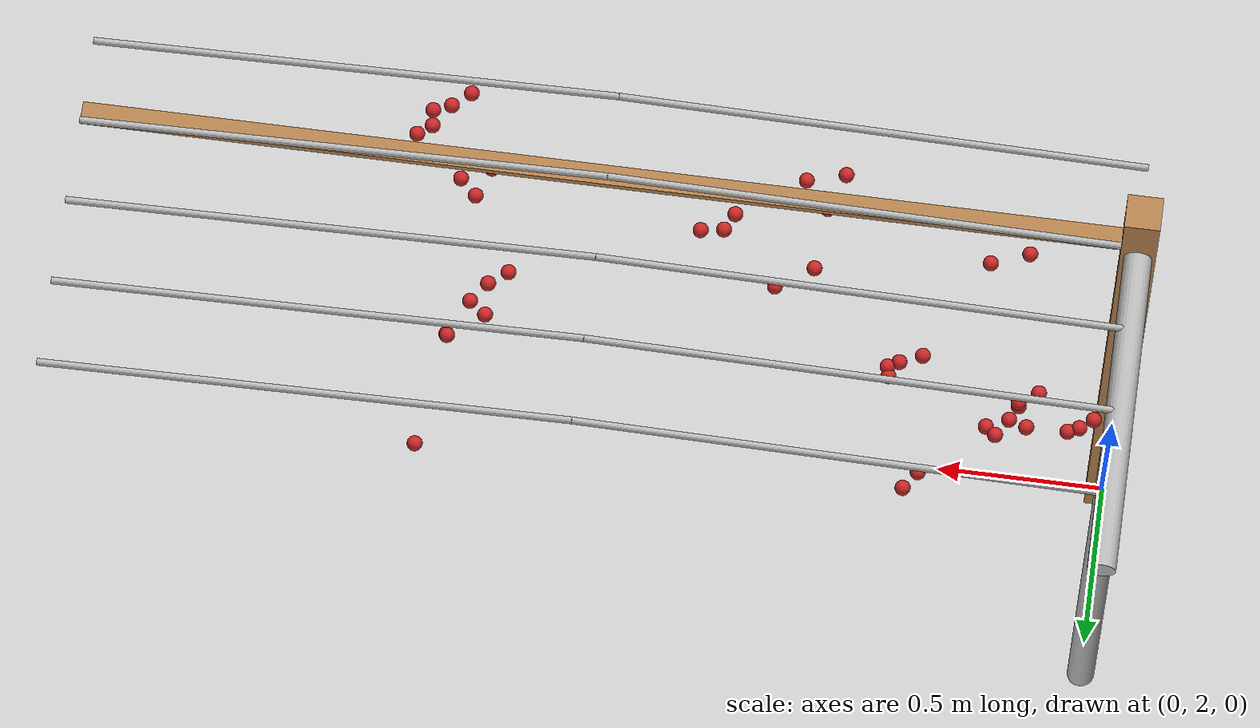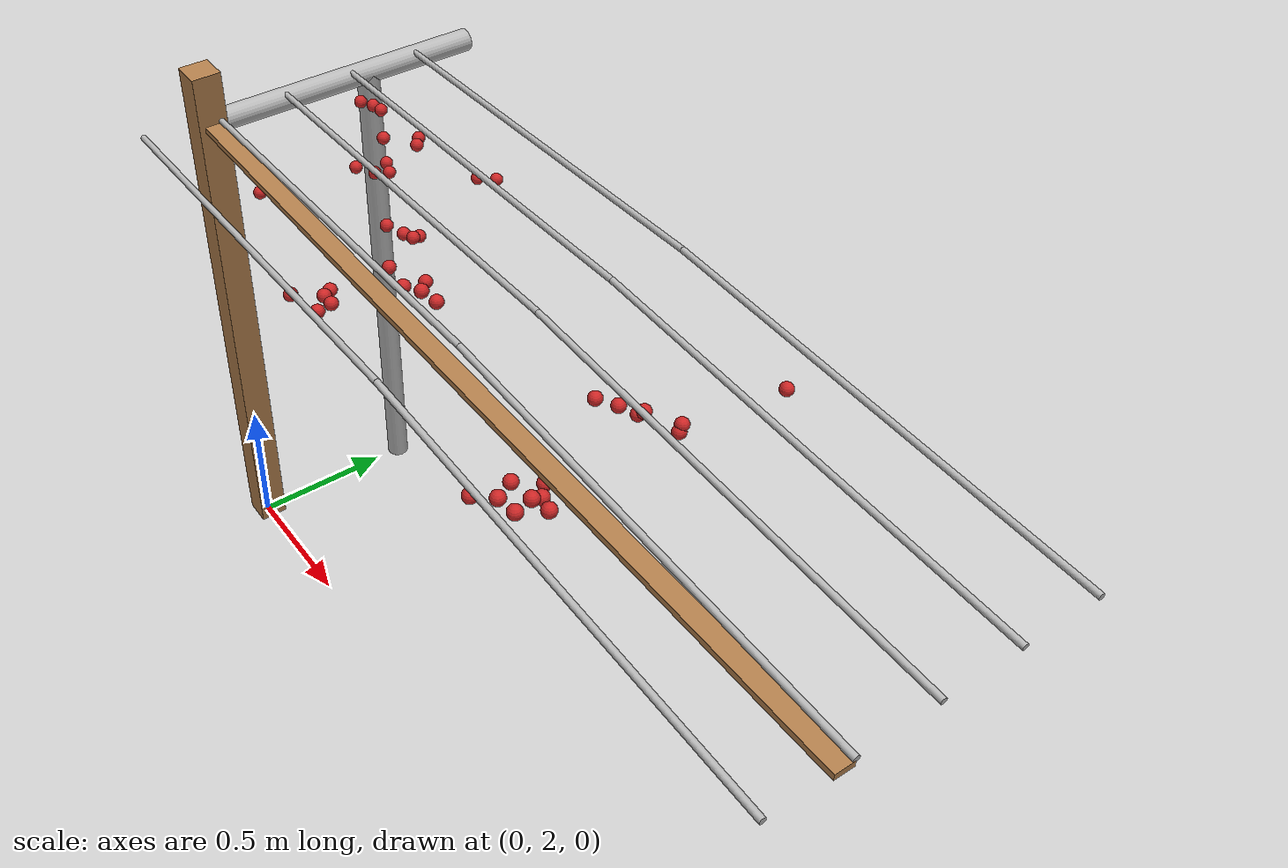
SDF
<sdf version="1.4">
 <model name="pergola">
  <include><name>post_2</name><pose>0.0 2.0 0 0 0 0</pose><uri>model://post</uri></include>
  <link name="beam_2">
   <pose>1.5 2.0 1.81 0 0 0</pose>
   <collision name="collision"><geometry><box><size>3.0 0.06 0.02</size></box></geometry></collision>
   <visual name="visual">
    <geometry><box><size>3.0 0.06 0.02</size></box></geometry>
    <material>
     <script>
      <uri>model://post/materials/scripts</uri>
      <uri>model://post/materials/textures</uri>
      <name>Post/Wood</name>
     </script>
    </material>
   </visual>
   <inertial>
    <mass>5</mass>
    <inertia>
     <ixx>0.0016666666666666668</ixx>
     <ixy>0.0</ixy>
     <ixz>0.0</ixz>
     <iyy>3.7515</iyy>
     <iyz>0.0</iyz>
     <izz>3.750166666666667</izz>
    </inertia>
   </inertial>
  </link>
  <include><name>tree_2</name><pose>0.0 2.6 0 0 0 0</pose><uri>model://tree_trunk</uri></include>
  <link name="baseBranch_2">
   <pose>0.0 2.5 1.8 1.5707963267948966 0 0</pose>
   <collision name="collision">
    <geometry><cylinder><radius>0.04</radius><length>1.0</length></cylinder></geometry>
   </collision>
   <visual name="visual">
    <geometry><cylinder><radius>0.04</radius><length>1.0</length></cylinder></geometry>
    <material>
     <script>
      <uri>model://tree_trunk/materials/scripts</uri>
      <uri>model://tree_trunk/materials/textures</uri>
      <name>Tree/Bark</name>
     </script>
    </material>
   </visual>
   <inertial>
    <mass>10</mass>
    <inertia>
     <ixx>0.8373333333333332</ixx>
     <ixy>0.0</ixy>
     <ixz>0.0</ixz>
     <iyy>0.8373333333333332</iyy>
     <iyz>0.0</iyz>
     <izz>0.008</izz>
    </inertia>
   </inertial>
  </link>
  <link name="vine_14">
   <pose>0.75 1.78 1.85 0 1.5374753309166493 0</pose>
   <collision name="collision">
    <geometry><cylinder><radius>0.01</radius><length>1.5008331019803633</length></cylinder></geometry>
   </collision>
   <visual name="visual">
    <geometry><cylinder><radius>0.01</radius><length>1.5008331019803633</length></cylinder></geometry>
    <material>
     <script>
      <uri>model://tree_trunk/materials/scripts</uri>
      <uri>model://tree_trunk/materials/textures</uri>
      <name>Tree/Bark</name>
     </script>
    </material>
   </visual>
   <inertial>
    <mass>5</mass>
    <inertia>
     <ixx>0.9386666666666668</ixx>
     <ixy>0.0</ixy>
     <ixz>0.0</ixz>
     <iyy>0.9386666666666668</iyy>
     <iyz>0.0</iyz>
     <izz>0.00025</izz>
    </inertia>
   </inertial>
  </link>
  <link name="vine_15">
   <pose>2.25 1.78 1.85 0 -1.5374753309166493 0</pose>
   <collision name="collision">
    <geometry><cylinder><radius>0.01</radius><length>1.5008331019803633</length></cylinder></geometry>
   </collision>
   <visual name="visual">
    <geometry><cylinder><radius>0.01</radius><length>1.5008331019803633</length></cylinder></geometry>
    <material>
     <script>
      <uri>model://tree_trunk/materials/scripts</uri>
      <uri>model://tree_trunk/materials/textures</uri>
      <name>Tree/Bark</name>
     </script>
    </material>
   </visual>
   <inertial>
    <mass>5</mass>
    <inertia>
     <ixx>0.9386666666666668</ixx>
     <ixy>0.0</ixy>
     <ixz>0.0</ixz>
     <iyy>0.9386666666666668</iyy>
     <iyz>0.0</iyz>
     <izz>0.00025</izz>
    </inertia>
   </inertial>
  </link>
  <link name="vine_16">
   <pose>0.75 2.03 1.85 0 1.5374753309166493 0</pose>
   <collision name="collision">
    <geometry><cylinder><radius>0.01</radius><length>1.5008331019803633</length></cylinder></geometry>
   </collision>
   <visual name="visual">
    <geometry><cylinder><radius>0.01</radius><length>1.5008331019803633</length></cylinder></geometry>
    <material>
     <script>
      <uri>model://tree_trunk/materials/scripts</uri>
      <uri>model://tree_trunk/materials/textures</uri>
      <name>Tree/Bark</name>
     </script>
    </material>
   </visual>
   <inertial>
    <mass>5</mass>
    <inertia>
     <ixx>0.9386666666666668</ixx>
     <ixy>0.0</ixy>
     <ixz>0.0</ixz>
     <iyy>0.9386666666666668</iyy>
     <iyz>0.0</iyz>
     <izz>0.00025</izz>
    </inertia>
   </inertial>
  </link>
  <link name="vine_17">
   <pose>2.25 2.03 1.85 0 -1.5374753309166493 0</pose>
   <collision name="collision">
    <geometry><cylinder><radius>0.01</radius><length>1.5008331019803633</length></cylinder></geometry>
   </collision>
   <visual name="visual">
    <geometry><cylinder><radius>0.01</radius><length>1.5008331019803633</length></cylinder></geometry>
    <material>
     <script>
      <uri>model://tree_trunk/materials/scripts</uri>
      <uri>model://tree_trunk/materials/textures</uri>
      <name>Tree/Bark</name>
     </script>
    </material>
   </visual>
   <inertial>
    <mass>5</mass>
    <inertia>
     <ixx>0.9386666666666668</ixx>
     <ixy>0.0</ixy>
     <ixz>0.0</ixz>
     <iyy>0.9386666666666668</iyy>
     <iyz>0.0</iyz>
     <izz>0.00025</izz>
    </inertia>
   </inertial>
  </link>
  <link name="vine_18">
   <pose>0.75 2.28 1.85 0 1.5374753309166493 0</pose>
   <collision name="collision">
    <geometry><cylinder><radius>0.01</radius><length>1.5008331019803633</length></cylinder></geometry>
   </collision>
   <visual name="visual">
    <geometry><cylinder><radius>0.01</radius><length>1.5008331019803633</length></cylinder></geometry>
    <material>
     <script>
      <uri>model://tree_trunk/materials/scripts</uri>
      <uri>model://tree_trunk/materials/textures</uri>
      <name>Tree/Bark</name>
     </script>
    </material>
   </visual>
   <inertial>
    <mass>5</mass>
    <inertia>
     <ixx>0.9386666666666668</ixx>
     <ixy>0.0</ixy>
     <ixz>0.0</ixz>
     <iyy>0.9386666666666668</iyy>
     <iyz>0.0</iyz>
     <izz>0.00025</izz>
    </inertia>
   </inertial>
  </link>
  <link name="vine_19">
   <pose>2.25 2.28 1.85 0 -1.5374753309166493 0</pose>
   <collision name="collision">
    <geometry><cylinder><radius>0.01</radius><length>1.5008331019803633</length></cylinder></geometry>
   </collision>
   <visual name="visual">
    <geometry><cylinder><radius>0.01</radius><length>1.5008331019803633</length></cylinder></geometry>
    <material>
     <script>
      <uri>model://tree_trunk/materials/scripts</uri>
      <uri>model://tree_trunk/materials/textures</uri>
      <name>Tree/Bark</name>
     </script>
    </material>
   </visual>
   <inertial>
    <mass>5</mass>
    <inertia>
     <ixx>0.9386666666666668</ixx>
     <ixy>0.0</ixy>
     <ixz>0.0</ixz>
     <iyy>0.9386666666666668</iyy>
     <iyz>0.0</iyz>
     <izz>0.00025</izz>
    </inertia>
   </inertial>
  </link>
  <link name="vine_20">
   <pose>0.75 2.53 1.85 0 1.5374753309166493 0</pose>
   <collision name="collision">
    <geometry><cylinder><radius>0.01</radius><length>1.5008331019803633</length></cylinder></geometry>
   </collision>
   <visual name="visual">
    <geometry><cylinder><radius>0.01</radius><length>1.5008331019803633</length></cylinder></geometry>
    <material>
     <script>
      <uri>model://tree_trunk/materials/scripts</uri>
      <uri>model://tree_trunk/materials/textures</uri>
      <name>Tree/Bark</name>
     </script>
    </material>
   </visual>
   <inertial>
    <mass>5</mass>
    <inertia>
     <ixx>0.9386666666666668</ixx>
     <ixy>0.0</ixy>
     <ixz>0.0</ixz>
     <iyy>0.9386666666666668</iyy>
     <iyz>0.0</iyz>
     <izz>0.00025</izz>
    </inertia>
   </inertial>
  </link>
  <link name="vine_21">
   <pose>2.25 2.53 1.85 0 -1.5374753309166493 0</pose>
   <collision name="collision">
    <geometry><cylinder><radius>0.01</radius><length>1.5008331019803633</length></cylinder></geometry>
   </collision>
   <visual name="visual">
    <geometry><cylinder><radius>0.01</radius><length>1.5008331019803633</length></cylinder></geometry>
    <material>
     <script>
      <uri>model://tree_trunk/materials/scripts</uri>
      <uri>model://tree_trunk/materials/textures</uri>
      <name>Tree/Bark</name>
     </script>
    </material>
   </visual>
   <inertial>
    <mass>5</mass>
    <inertia>
     <ixx>0.9386666666666668</ixx>
     <ixy>0.0</ixy>
     <ixz>0.0</ixz>
     <iyy>0.9386666666666668</iyy>
     <iyz>0.0</iyz>
     <izz>0.00025</izz>
    </inertia>
   </inertial>
  </link>
  <link name="vine_22">
   <pose>0.75 2.78 1.85 0 1.5374753309166493 0</pose>
   <collision name="collision">
    <geometry><cylinder><radius>0.01</radius><length>1.5008331019803633</length></cylinder></geometry>
   </collision>
   <visual name="visual">
    <geometry><cylinder><radius>0.01</radius><length>1.5008331019803633</length></cylinder></geometry>
    <material>
     <script>
      <uri>model://tree_trunk/materials/scripts</uri>
      <uri>model://tree_trunk/materials/textures</uri>
      <name>Tree/Bark</name>
     </script>
    </material>
   </visual>
   <inertial>
    <mass>5</mass>
    <inertia>
     <ixx>0.9386666666666668</ixx>
     <ixy>0.0</ixy>
     <ixz>0.0</ixz>
     <iyy>0.9386666666666668</iyy>
     <iyz>0.0</iyz>
     <izz>0.00025</izz>
    </inertia>
   </inertial>
  </link>
  <link name="vine_23">
   <pose>2.25 2.78 1.85 0 -1.5374753309166493 0</pose>
   <collision name="collision">
    <geometry><cylinder><radius>0.01</radius><length>1.5008331019803633</length></cylinder></geometry>
   </collision>
   <visual name="visual">
    <geometry><cylinder><radius>0.01</radius><length>1.5008331019803633</length></cylinder></geometry>
    <material>
     <script>
      <uri>model://tree_trunk/materials/scripts</uri>
      <uri>model://tree_trunk/materials/textures</uri>
      <name>Tree/Bark</name>
     </script>
    </material>
   </visual>
   <inertial>
    <mass>5</mass>
    <inertia>
     <ixx>0.9386666666666668</ixx>
     <ixy>0.0</ixy>
     <ixz>0.0</ixz>
     <iyy>0.9386666666666668</iyy>
     <iyz>0.0</iyz>
     <izz>0.00025</izz>
    </inertia>
   </inertial>
  </link>
  <link name="fruit_14">
   <pose>1.797422350008043 2.4029331799500224 1.6634342570145582 0 0 0</pose>
   <collision name="fruit_collision_14"><geometry><sphere><radius>0.022</radius></sphere></geometry></collision>
   <visual name="visual">
    <geometry><sphere><radius>0.022</radius></sphere></geometry>
    <material><script><name>Gazebo/Red</name></script></material>
   </visual>
   <inertial>
    <mass>0.05</mass>
    <inertia>
     <ixx>9.679999999999999e-06</ixx>
     <ixy>0.0</ixy>
     <ixz>0.0</ixz>
     <iyy>9.679999999999999e-06</iyy>
     <iyz>0.0</iyz>
     <izz>9.679999999999999e-06</izz>
    </inertia>
   </inertial>
   <sensor name="fruit_contact_14" type="contact">
    <plugin name="contact_plugin_14" filename="libcontact_plugin.so"/>
    <contact><collision>fruit_collision_14</collision><topic>fruit_contact_topic_14</topic></contact>
   </sensor>
  </link>
  <link name="fruit_15">
   <pose>0.2998525648798183 2.025850174953905 1.68766383536338 0 0 0</pose>
   <collision name="fruit_collision_15"><geometry><sphere><radius>0.022</radius></sphere></geometry></collision>
   <visual name="visual">
    <geometry><sphere><radius>0.022</radius></sphere></geometry>
    <material><script><name>Gazebo/Red</name></script></material>
   </visual>
   <inertial>
    <mass>0.05</mass>
    <inertia>
     <ixx>9.679999999999999e-06</ixx>
     <ixy>0.0</ixy>
     <ixz>0.0</ixz>
     <iyy>9.679999999999999e-06</iyy>
     <iyz>0.0</iyz>
     <izz>9.679999999999999e-06</izz>
    </inertia>
   </inertial>
   <sensor name="fruit_contact_15" type="contact">
    <plugin name="contact_plugin_15" filename="libcontact_plugin.so"/>
    <contact><collision>fruit_collision_15</collision><topic>fruit_contact_topic_15</topic></contact>
   </sensor>
  </link>
  <link name="fruit_16">
   <pose>1.9388411159849896 2.812365617327368 1.6507503850629062 0 0 0</pose>
   <collision name="fruit_collision_16"><geometry><sphere><radius>0.022</radius></sphere></geometry></collision>
   <visual name="visual">
    <geometry><sphere><radius>0.022</radius></sphere></geometry>
    <material><script><name>Gazebo/Red</name></script></material>
   </visual>
   <inertial>
    <mass>0.05</mass>
    <inertia>
     <ixx>9.679999999999999e-06</ixx>
     <ixy>0.0</ixy>
     <ixz>0.0</ixz>
     <iyy>9.679999999999999e-06</iyy>
     <iyz>0.0</iyz>
     <izz>9.679999999999999e-06</izz>
    </inertia>
   </inertial>
   <sensor name="fruit_contact_16" type="contact">
    <plugin name="contact_plugin_16" filename="libcontact_plugin.so"/>
    <contact><collision>fruit_collision_16</collision><topic>fruit_contact_topic_16</topic></contact>
   </sensor>
  </link>
  <link name="fruit_17">
   <pose>0.5368665175227398 2.699146905167458 1.6174039220565744 0 0 0</pose>
   <collision name="fruit_collision_17"><geometry><sphere><radius>0.022</radius></sphere></geometry></collision>
   <visual name="visual">
    <geometry><sphere><radius>0.022</radius></sphere></geometry>
    <material><script><name>Gazebo/Red</name></script></material>
   </visual>
   <inertial>
    <mass>0.05</mass>
    <inertia>
     <ixx>9.679999999999999e-06</ixx>
     <ixy>0.0</ixy>
     <ixz>0.0</ixz>
     <iyy>9.679999999999999e-06</iyy>
     <iyz>0.0</iyz>
     <izz>9.679999999999999e-06</izz>
    </inertia>
   </inertial>
   <sensor name="fruit_contact_17" type="contact">
    <plugin name="contact_plugin_17" filename="libcontact_plugin.so"/>
    <contact><collision>fruit_collision_17</collision><topic>fruit_contact_topic_17</topic></contact>
   </sensor>
  </link>
  <link name="fruit_20">
   <pose>1.918103072466909 1.7935362236497687 1.8067068360378213 0 0 0</pose>
   <collision name="fruit_collision_20"><geometry><sphere><radius>0.022</radius></sphere></geometry></collision>
   <visual name="visual">
    <geometry><sphere><radius>0.022</radius></sphere></geometry>
    <material><script><name>Gazebo/Red</name></script></material>
   </visual>
   <inertial>
    <mass>0.05</mass>
    <inertia>
     <ixx>9.679999999999999e-06</ixx>
     <ixy>0.0</ixy>
     <ixz>0.0</ixz>
     <iyy>9.679999999999999e-06</iyy>
     <iyz>0.0</iyz>
     <izz>9.679999999999999e-06</izz>
    </inertia>
   </inertial>
   <sensor name="fruit_contact_20" type="contact">
    <plugin name="contact_plugin_20" filename="libcontact_plugin.so"/>
    <contact><collision>fruit_collision_20</collision><topic>fruit_contact_topic_20</topic></contact>
   </sensor>
  </link>
  <link name="fruit_35">
   <pose>0.22804890907890302 2.408820380404477 1.6015270107126434 0 0 0</pose>
   <collision name="fruit_collision_35"><geometry><sphere><radius>0.022</radius></sphere></geometry></collision>
   <visual name="visual">
    <geometry><sphere><radius>0.022</radius></sphere></geometry>
    <material><script><name>Gazebo/Red</name></script></material>
   </visual>
   <inertial>
    <mass>0.05</mass>
    <inertia>
     <ixx>9.679999999999999e-06</ixx>
     <ixy>0.0</ixy>
     <ixz>0.0</ixz>
     <iyy>9.679999999999999e-06</iyy>
     <iyz>0.0</iyz>
     <izz>9.679999999999999e-06</izz>
    </inertia>
   </inertial>
   <sensor name="fruit_contact_35" type="contact">
    <plugin name="contact_plugin_35" filename="libcontact_plugin.so"/>
    <contact><collision>fruit_collision_35</collision><topic>fruit_contact_topic_35</topic></contact>
   </sensor>
  </link>
  <link name="fruit_36">
   <pose>0.06843721265859991 2.528373823735301 1.737405123911887 0 0 0</pose>
   <collision name="fruit_collision_36"><geometry><sphere><radius>0.022</radius></sphere></geometry></collision>
   <visual name="visual">
    <geometry><sphere><radius>0.022</radius></sphere></geometry>
    <material><script><name>Gazebo/Red</name></script></material>
   </visual>
   <inertial>
    <mass>0.05</mass>
    <inertia>
     <ixx>9.679999999999999e-06</ixx>
     <ixy>0.0</ixy>
     <ixz>0.0</ixz>
     <iyy>9.679999999999999e-06</iyy>
     <iyz>0.0</iyz>
     <izz>9.679999999999999e-06</izz>
    </inertia>
   </inertial>
   <sensor name="fruit_contact_36" type="contact">
    <plugin name="contact_plugin_36" filename="libcontact_plugin.so"/>
    <contact><collision>fruit_collision_36</collision><topic>fruit_contact_topic_36</topic></contact>
   </sensor>
  </link>
  <link name="fruit_37">
   <pose>1.9681334964929775 1.84108198828828 1.8130432159303218 0 0 0</pose>
   <collision name="fruit_collision_37"><geometry><sphere><radius>0.022</radius></sphere></geometry></collision>
   <visual name="visual">
    <geometry><sphere><radius>0.022</radius></sphere></geometry>
    <material><script><name>Gazebo/Red</name></script></material>
   </visual>
   <inertial>
    <mass>0.05</mass>
    <inertia>
     <ixx>9.679999999999999e-06</ixx>
     <ixy>0.0</ixy>
     <ixz>0.0</ixz>
     <iyy>9.679999999999999e-06</iyy>
     <iyz>0.0</iyz>
     <izz>9.679999999999999e-06</izz>
    </inertia>
   </inertial>
   <sensor name="fruit_contact_37" type="contact">
    <plugin name="contact_plugin_37" filename="libcontact_plugin.so"/>
    <contact><collision>fruit_collision_37</collision><topic>fruit_contact_topic_37</topic></contact>
   </sensor>
  </link>
  <link name="fruit_44">
   <pose>0.8416807068234307 1.855359376595429 1.6987159826525369 0 0 0</pose>
   <collision name="fruit_collision_44"><geometry><sphere><radius>0.022</radius></sphere></geometry></collision>
   <visual name="visual">
    <geometry><sphere><radius>0.022</radius></sphere></geometry>
    <material><script><name>Gazebo/Red</name></script></material>
   </visual>
   <inertial>
    <mass>0.05</mass>
    <inertia>
     <ixx>9.679999999999999e-06</ixx>
     <ixy>0.0</ixy>
     <ixz>0.0</ixz>
     <iyy>9.679999999999999e-06</iyy>
     <iyz>0.0</iyz>
     <izz>9.679999999999999e-06</izz>
    </inertia>
   </inertial>
   <sensor name="fruit_contact_44" type="contact">
    <plugin name="contact_plugin_44" filename="libcontact_plugin.so"/>
    <contact><collision>fruit_collision_44</collision><topic>fruit_contact_topic_44</topic></contact>
   </sensor>
  </link>
  <link name="fruit_57">
   <pose>1.1327991734923857 2.072912176157053 1.8194332912437496 0 0 0</pose>
   <collision name="fruit_collision_57"><geometry><sphere><radius>0.022</radius></sphere></geometry></collision>
   <visual name="visual">
    <geometry><sphere><radius>0.022</radius></sphere></geometry>
    <material><script><name>Gazebo/Red</name></script></material>
   </visual>
   <inertial>
    <mass>0.05</mass>
    <inertia>
     <ixx>9.679999999999999e-06</ixx>
     <ixy>0.0</ixy>
     <ixz>0.0</ixz>
     <iyy>9.679999999999999e-06</iyy>
     <iyz>0.0</iyz>
     <izz>9.679999999999999e-06</izz>
    </inertia>
   </inertial>
   <sensor name="fruit_contact_57" type="contact">
    <plugin name="contact_plugin_57" filename="libcontact_plugin.so"/>
    <contact><collision>fruit_collision_57</collision><topic>fruit_contact_topic_57</topic></contact>
   </sensor>
  </link>
  <link name="fruit_69">
   <pose>0.8959518341865111 2.156549787554778 1.7033009984328606 0 0 0</pose>
   <collision name="fruit_collision_69"><geometry><sphere><radius>0.022</radius></sphere></geometry></collision>
   <visual name="visual">
    <geometry><sphere><radius>0.022</radius></sphere></geometry>
    <material><script><name>Gazebo/Red</name></script></material>
   </visual>
   <inertial>
    <mass>0.05</mass>
    <inertia>
     <ixx>9.679999999999999e-06</ixx>
     <ixy>0.0</ixy>
     <ixz>0.0</ixz>
     <iyy>9.679999999999999e-06</iyy>
     <iyz>0.0</iyz>
     <izz>9.679999999999999e-06</izz>
    </inertia>
   </inertial>
   <sensor name="fruit_contact_69" type="contact">
    <plugin name="contact_plugin_69" filename="libcontact_plugin.so"/>
    <contact><collision>fruit_collision_69</collision><topic>fruit_contact_topic_69</topic></contact>
   </sensor>
  </link>
  <link name="fruit_93">
   <pose>0.28178831543681304 2.493325935592038 1.7151957535004618 0 0 0</pose>
   <collision name="fruit_collision_93"><geometry><sphere><radius>0.022</radius></sphere></geometry></collision>
   <visual name="visual">
    <geometry><sphere><radius>0.022</radius></sphere></geometry>
    <material><script><name>Gazebo/Red</name></script></material>
   </visual>
   <inertial>
    <mass>0.05</mass>
    <inertia>
     <ixx>9.679999999999999e-06</ixx>
     <ixy>0.0</ixy>
     <ixz>0.0</ixz>
     <iyy>9.679999999999999e-06</iyy>
     <iyz>0.0</iyz>
     <izz>9.679999999999999e-06</izz>
    </inertia>
   </inertial>
   <sensor name="fruit_contact_93" type="contact">
    <plugin name="contact_plugin_93" filename="libcontact_plugin.so"/>
    <contact><collision>fruit_collision_93</collision><topic>fruit_contact_topic_93</topic></contact>
   </sensor>
  </link>
  <link name="fruit_100">
   <pose>1.8375335739587517 1.964237055135513 1.6895310833501955 0 0 0</pose>
   <collision name="fruit_collision_100"><geometry><sphere><radius>0.022</radius></sphere></geometry></collision>
   <visual name="visual">
    <geometry><sphere><radius>0.022</radius></sphere></geometry>
    <material><script><name>Gazebo/Red</name></script></material>
   </visual>
   <inertial>
    <mass>0.05</mass>
    <inertia>
     <ixx>9.679999999999999e-06</ixx>
     <ixy>0.0</ixy>
     <ixz>0.0</ixz>
     <iyy>9.679999999999999e-06</iyy>
     <iyz>0.0</iyz>
     <izz>9.679999999999999e-06</izz>
    </inertia>
   </inertial>
   <sensor name="fruit_contact_100" type="contact">
    <plugin name="contact_plugin_100" filename="libcontact_plugin.so"/>
    <contact><collision>fruit_collision_100</collision><topic>fruit_contact_topic_100</topic></contact>
   </sensor>
  </link>
  <link name="fruit_146">
   <pose>1.7445652154884885 2.2966042488876943 1.73561206790079 0 0 0</pose>
   <collision name="fruit_collision_146"><geometry><sphere><radius>0.022</radius></sphere></geometry></collision>
   <visual name="visual">
    <geometry><sphere><radius>0.022</radius></sphere></geometry>
    <material><script><name>Gazebo/Red</name></script></material>
   </visual>
   <inertial>
    <mass>0.05</mass>
    <inertia>
     <ixx>9.679999999999999e-06</ixx>
     <ixy>0.0</ixy>
     <ixz>0.0</ixz>
     <iyy>9.679999999999999e-06</iyy>
     <iyz>0.0</iyz>
     <izz>9.679999999999999e-06</izz>
    </inertia>
   </inertial>
   <sensor name="fruit_contact_146" type="contact">
    <plugin name="contact_plugin_146" filename="libcontact_plugin.so"/>
    <contact><collision>fruit_collision_146</collision><topic>fruit_contact_topic_146</topic></contact>
   </sensor>
  </link>
  <link name="fruit_147">
   <pose>0.564354314550694 2.3325430331428603 1.5892848970498425 0 0 0</pose>
   <collision name="fruit_collision_147"><geometry><sphere><radius>0.022</radius></sphere></geometry></collision>
   <visual name="visual">
    <geometry><sphere><radius>0.022</radius></sphere></geometry>
    <material><script><name>Gazebo/Red</name></script></material>
   </visual>
   <inertial>
    <mass>0.05</mass>
    <inertia>
     <ixx>9.679999999999999e-06</ixx>
     <ixy>0.0</ixy>
     <ixz>0.0</ixz>
     <iyy>9.679999999999999e-06</iyy>
     <iyz>0.0</iyz>
     <izz>9.679999999999999e-06</izz>
    </inertia>
   </inertial>
   <sensor name="fruit_contact_147" type="contact">
    <plugin name="contact_plugin_147" filename="libcontact_plugin.so"/>
    <contact><collision>fruit_collision_147</collision><topic>fruit_contact_topic_147</topic></contact>
   </sensor>
  </link>
  <link name="fruit_156">
   <pose>0.252013473570299 2.5133496896733036 1.5931205757189035 0 0 0</pose>
   <collision name="fruit_collision_156"><geometry><sphere><radius>0.022</radius></sphere></geometry></collision>
   <visual name="visual">
    <geometry><sphere><radius>0.022</radius></sphere></geometry>
    <material><script><name>Gazebo/Red</name></script></material>
   </visual>
   <inertial>
    <mass>0.05</mass>
    <inertia>
     <ixx>9.679999999999999e-06</ixx>
     <ixy>0.0</ixy>
     <ixz>0.0</ixz>
     <iyy>9.679999999999999e-06</iyy>
     <iyz>0.0</iyz>
     <izz>9.679999999999999e-06</izz>
    </inertia>
   </inertial>
   <sensor name="fruit_contact_156" type="contact">
    <plugin name="contact_plugin_156" filename="libcontact_plugin.so"/>
    <contact><collision>fruit_collision_156</collision><topic>fruit_contact_topic_156</topic></contact>
   </sensor>
  </link>
  <link name="fruit_169">
   <pose>0.13695097999494676 2.567937682050255 1.7249678228359107 0 0 0</pose>
   <collision name="fruit_collision_169"><geometry><sphere><radius>0.022</radius></sphere></geometry></collision>
   <visual name="visual">
    <geometry><sphere><radius>0.022</radius></sphere></geometry>
    <material><script><name>Gazebo/Red</name></script></material>
   </visual>
   <inertial>
    <mass>0.05</mass>
    <inertia>
     <ixx>9.679999999999999e-06</ixx>
     <ixy>0.0</ixy>
     <ixz>0.0</ixz>
     <iyy>9.679999999999999e-06</iyy>
     <iyz>0.0</iyz>
     <izz>9.679999999999999e-06</izz>
    </inertia>
   </inertial>
   <sensor name="fruit_contact_169" type="contact">
    <plugin name="contact_plugin_169" filename="libcontact_plugin.so"/>
    <contact><collision>fruit_collision_169</collision><topic>fruit_contact_topic_169</topic></contact>
   </sensor>
  </link>
  <link name="fruit_172">
   <pose>0.9509407671076529 1.8853657353461521 1.6942700181926207 0 0 0</pose>
   <collision name="fruit_collision_172"><geometry><sphere><radius>0.022</radius></sphere></geometry></collision>
   <visual name="visual">
    <geometry><sphere><radius>0.022</radius></sphere></geometry>
    <material><script><name>Gazebo/Red</name></script></material>
   </visual>
   <inertial>
    <mass>0.05</mass>
    <inertia>
     <ixx>9.679999999999999e-06</ixx>
     <ixy>0.0</ixy>
     <ixz>0.0</ixz>
     <iyy>9.679999999999999e-06</iyy>
     <iyz>0.0</iyz>
     <izz>9.679999999999999e-06</izz>
    </inertia>
   </inertial>
   <sensor name="fruit_contact_172" type="contact">
    <plugin name="contact_plugin_172" filename="libcontact_plugin.so"/>
    <contact><collision>fruit_collision_172</collision><topic>fruit_contact_topic_172</topic></contact>
   </sensor>
  </link>
  <link name="fruit_183">
   <pose>2.0546043083452146 1.931456360339463 1.791892064062959 0 0 0</pose>
   <collision name="fruit_collision_183"><geometry><sphere><radius>0.022</radius></sphere></geometry></collision>
   <visual name="visual">
    <geometry><sphere><radius>0.022</radius></sphere></geometry>
    <material><script><name>Gazebo/Red</name></script></material>
   </visual>
   <inertial>
    <mass>0.05</mass>
    <inertia>
     <ixx>9.679999999999999e-06</ixx>
     <ixy>0.0</ixy>
     <ixz>0.0</ixz>
     <iyy>9.679999999999999e-06</iyy>
     <iyz>0.0</iyz>
     <izz>9.679999999999999e-06</izz>
    </inertia>
   </inertial>
   <sensor name="fruit_contact_183" type="contact">
    <plugin name="contact_plugin_183" filename="libcontact_plugin.so"/>
    <contact><collision>fruit_collision_183</collision><topic>fruit_contact_topic_183</topic></contact>
   </sensor>
  </link>
  <link name="fruit_187">
   <pose>2.019231684475637 1.8561835640510649 1.7993928423060848 0 0 0</pose>
   <collision name="fruit_collision_187"><geometry><sphere><radius>0.022</radius></sphere></geometry></collision>
   <visual name="visual">
    <geometry><sphere><radius>0.022</radius></sphere></geometry>
    <material><script><name>Gazebo/Red</name></script></material>
   </visual>
   <inertial>
    <mass>0.05</mass>
    <inertia>
     <ixx>9.679999999999999e-06</ixx>
     <ixy>0.0</ixy>
     <ixz>0.0</ixz>
     <iyy>9.679999999999999e-06</iyy>
     <iyz>0.0</iyz>
     <izz>9.679999999999999e-06</izz>
    </inertia>
   </inertial>
   <sensor name="fruit_contact_187" type="contact">
    <plugin name="contact_plugin_187" filename="libcontact_plugin.so"/>
    <contact><collision>fruit_collision_187</collision><topic>fruit_contact_topic_187</topic></contact>
   </sensor>
  </link>
  <link name="fruit_188">
   <pose>1.8742923000646041 2.0438544425100553 1.6681062606243264 0 0 0</pose>
   <collision name="fruit_collision_188"><geometry><sphere><radius>0.022</radius></sphere></geometry></collision>
   <visual name="visual">
    <geometry><sphere><radius>0.022</radius></sphere></geometry>
    <material><script><name>Gazebo/Red</name></script></material>
   </visual>
   <inertial>
    <mass>0.05</mass>
    <inertia>
     <ixx>9.679999999999999e-06</ixx>
     <ixy>0.0</ixy>
     <ixz>0.0</ixz>
     <iyy>9.679999999999999e-06</iyy>
     <iyz>0.0</iyz>
     <izz>9.679999999999999e-06</izz>
    </inertia>
   </inertial>
   <sensor name="fruit_contact_188" type="contact">
    <plugin name="contact_plugin_188" filename="libcontact_plugin.so"/>
    <contact><collision>fruit_collision_188</collision><topic>fruit_contact_topic_188</topic></contact>
   </sensor>
  </link>
  <link name="fruit_192">
   <pose>0.627670879113317 2.3581600115238617 1.583569729314695 0 0 0</pose>
   <collision name="fruit_collision_192"><geometry><sphere><radius>0.022</radius></sphere></geometry></collision>
   <visual name="visual">
    <geometry><sphere><radius>0.022</radius></sphere></geometry>
    <material><script><name>Gazebo/Red</name></script></material>
   </visual>
   <inertial>
    <mass>0.05</mass>
    <inertia>
     <ixx>9.679999999999999e-06</ixx>
     <ixy>0.0</ixy>
     <ixz>0.0</ixz>
     <iyy>9.679999999999999e-06</iyy>
     <iyz>0.0</iyz>
     <izz>9.679999999999999e-06</izz>
    </inertia>
   </inertial>
   <sensor name="fruit_contact_192" type="contact">
    <plugin name="contact_plugin_192" filename="libcontact_plugin.so"/>
    <contact><collision>fruit_collision_192</collision><topic>fruit_contact_topic_192</topic></contact>
   </sensor>
  </link>
  <link name="fruit_203">
   <pose>0.30239130698723005 2.494979462264383 1.5889915300052302 0 0 0</pose>
   <collision name="fruit_collision_203"><geometry><sphere><radius>0.022</radius></sphere></geometry></collision>
   <visual name="visual">
    <geometry><sphere><radius>0.022</radius></sphere></geometry>
    <material><script><name>Gazebo/Red</name></script></material>
   </visual>
   <inertial>
    <mass>0.05</mass>
    <inertia>
     <ixx>9.679999999999999e-06</ixx>
     <ixy>0.0</ixy>
     <ixz>0.0</ixz>
     <iyy>9.679999999999999e-06</iyy>
     <iyz>0.0</iyz>
     <izz>9.679999999999999e-06</izz>
    </inertia>
   </inertial>
   <sensor name="fruit_contact_203" type="contact">
    <plugin name="contact_plugin_203" filename="libcontact_plugin.so"/>
    <contact><collision>fruit_collision_203</collision><topic>fruit_contact_topic_203</topic></contact>
   </sensor>
  </link>
  <link name="fruit_206">
   <pose>1.7972047424380115 2.3354317741912767 1.7294213457418037 0 0 0</pose>
   <collision name="fruit_collision_206"><geometry><sphere><radius>0.022</radius></sphere></geometry></collision>
   <visual name="visual">
    <geometry><sphere><radius>0.022</radius></sphere></geometry>
    <material><script><name>Gazebo/Red</name></script></material>
   </visual>
   <inertial>
    <mass>0.05</mass>
    <inertia>
     <ixx>9.679999999999999e-06</ixx>
     <ixy>0.0</ixy>
     <ixz>0.0</ixz>
     <iyy>9.679999999999999e-06</iyy>
     <iyz>0.0</iyz>
     <izz>9.679999999999999e-06</izz>
    </inertia>
   </inertial>
   <sensor name="fruit_contact_206" type="contact">
    <plugin name="contact_plugin_206" filename="libcontact_plugin.so"/>
    <contact><collision>fruit_collision_206</collision><topic>fruit_contact_topic_206</topic></contact>
   </sensor>
  </link>
  <link name="fruit_236">
   <pose>0.27948776893419575 2.4515763969739366 1.5912845772827224 0 0 0</pose>
   <collision name="fruit_collision_236"><geometry><sphere><radius>0.022</radius></sphere></geometry></collision>
   <visual name="visual">
    <geometry><sphere><radius>0.022</radius></sphere></geometry>
    <material><script><name>Gazebo/Red</name></script></material>
   </visual>
   <inertial>
    <mass>0.05</mass>
    <inertia>
     <ixx>9.679999999999999e-06</ixx>
     <ixy>0.0</ixy>
     <ixz>0.0</ixz>
     <iyy>9.679999999999999e-06</iyy>
     <iyz>0.0</iyz>
     <izz>9.679999999999999e-06</izz>
    </inertia>
   </inertial>
   <sensor name="fruit_contact_236" type="contact">
    <plugin name="contact_plugin_236" filename="libcontact_plugin.so"/>
    <contact><collision>fruit_collision_236</collision><topic>fruit_contact_topic_236</topic></contact>
   </sensor>
  </link>
  <link name="fruit_307">
   <pose>1.8408353028682953 2.3883764251363417 1.713801560157483 0 0 0</pose>
   <collision name="fruit_collision_307"><geometry><sphere><radius>0.022</radius></sphere></geometry></collision>
   <visual name="visual">
    <geometry><sphere><radius>0.022</radius></sphere></geometry>
    <material><script><name>Gazebo/Red</name></script></material>
   </visual>
   <inertial>
    <mass>0.05</mass>
    <inertia>
     <ixx>9.679999999999999e-06</ixx>
     <ixy>0.0</ixy>
     <ixz>0.0</ixz>
     <iyy>9.679999999999999e-06</iyy>
     <iyz>0.0</iyz>
     <izz>9.679999999999999e-06</izz>
    </inertia>
   </inertial>
   <sensor name="fruit_contact_307" type="contact">
    <plugin name="contact_plugin_307" filename="libcontact_plugin.so"/>
    <contact><collision>fruit_collision_307</collision><topic>fruit_contact_topic_307</topic></contact>
   </sensor>
  </link>
  <link name="fruit_313">
   <pose>0.6535305545532633 2.400084727425198 1.572002416461425 0 0 0</pose>
   <collision name="fruit_collision_313"><geometry><sphere><radius>0.022</radius></sphere></geometry></collision>
   <visual name="visual">
    <geometry><sphere><radius>0.022</radius></sphere></geometry>
    <material><script><name>Gazebo/Red</name></script></material>
   </visual>
   <inertial>
    <mass>0.05</mass>
    <inertia>
     <ixx>9.679999999999999e-06</ixx>
     <ixy>0.0</ixy>
     <ixz>0.0</ixz>
     <iyy>9.679999999999999e-06</iyy>
     <iyz>0.0</iyz>
     <izz>9.679999999999999e-06</izz>
    </inertia>
   </inertial>
   <sensor name="fruit_contact_313" type="contact">
    <plugin name="contact_plugin_313" filename="libcontact_plugin.so"/>
    <contact><collision>fruit_collision_313</collision><topic>fruit_contact_topic_313</topic></contact>
   </sensor>
  </link>
  <link name="fruit_325">
   <pose>0.33577576277632265 2.5967525575266333 1.7069996568978059 0 0 0</pose>
   <collision name="fruit_collision_325"><geometry><sphere><radius>0.022</radius></sphere></geometry></collision>
   <visual name="visual">
    <geometry><sphere><radius>0.022</radius></sphere></geometry>
    <material><script><name>Gazebo/Red</name></script></material>
   </visual>
   <inertial>
    <mass>0.05</mass>
    <inertia>
     <ixx>9.679999999999999e-06</ixx>
     <ixy>0.0</ixy>
     <ixz>0.0</ixz>
     <iyy>9.679999999999999e-06</iyy>
     <iyz>0.0</iyz>
     <izz>9.679999999999999e-06</izz>
    </inertia>
   </inertial>
   <sensor name="fruit_contact_325" type="contact">
    <plugin name="contact_plugin_325" filename="libcontact_plugin.so"/>
    <contact><collision>fruit_collision_325</collision><topic>fruit_contact_topic_325</topic></contact>
   </sensor>
  </link>
  <link name="fruit_332">
   <pose>0.10532969978251362 2.556014360102385 1.7317873050580772 0 0 0</pose>
   <collision name="fruit_collision_332"><geometry><sphere><radius>0.022</radius></sphere></geometry></collision>
   <visual name="visual">
    <geometry><sphere><radius>0.022</radius></sphere></geometry>
    <material><script><name>Gazebo/Red</name></script></material>
   </visual>
   <inertial>
    <mass>0.05</mass>
    <inertia>
     <ixx>9.679999999999999e-06</ixx>
     <ixy>0.0</ixy>
     <ixz>0.0</ixz>
     <iyy>9.679999999999999e-06</iyy>
     <iyz>0.0</iyz>
     <izz>9.679999999999999e-06</izz>
    </inertia>
   </inertial>
   <sensor name="fruit_contact_332" type="contact">
    <plugin name="contact_plugin_332" filename="libcontact_plugin.so"/>
    <contact><collision>fruit_collision_332</collision><topic>fruit_contact_topic_332</topic></contact>
   </sensor>
  </link>
  <link name="fruit_343">
   <pose>2.013494739091899 1.908672390846834 1.8100531076744497 0 0 0</pose>
   <collision name="fruit_collision_343"><geometry><sphere><radius>0.022</radius></sphere></geometry></collision>
   <visual name="visual">
    <geometry><sphere><radius>0.022</radius></sphere></geometry>
    <material><script><name>Gazebo/Red</name></script></material>
   </visual>
   <inertial>
    <mass>0.05</mass>
    <inertia>
     <ixx>9.679999999999999e-06</ixx>
     <ixy>0.0</ixy>
     <ixz>0.0</ixz>
     <iyy>9.679999999999999e-06</iyy>
     <iyz>0.0</iyz>
     <izz>9.679999999999999e-06</izz>
    </inertia>
   </inertial>
   <sensor name="fruit_contact_343" type="contact">
    <plugin name="contact_plugin_343" filename="libcontact_plugin.so"/>
    <contact><collision>fruit_collision_343</collision><topic>fruit_contact_topic_343</topic></contact>
   </sensor>
  </link>
  <link name="fruit_391">
   <pose>1.1589894347851872 2.1156522077242785 1.80091654266481 0 0 0</pose>
   <collision name="fruit_collision_391"><geometry><sphere><radius>0.022</radius></sphere></geometry></collision>
   <visual name="visual">
    <geometry><sphere><radius>0.022</radius></sphere></geometry>
    <material><script><name>Gazebo/Red</name></script></material>
   </visual>
   <inertial>
    <mass>0.05</mass>
    <inertia>
     <ixx>9.679999999999999e-06</ixx>
     <ixy>0.0</ixy>
     <ixz>0.0</ixz>
     <iyy>9.679999999999999e-06</iyy>
     <iyz>0.0</iyz>
     <izz>9.679999999999999e-06</izz>
    </inertia>
   </inertial>
   <sensor name="fruit_contact_391" type="contact">
    <plugin name="contact_plugin_391" filename="libcontact_plugin.so"/>
    <contact><collision>fruit_collision_391</collision><topic>fruit_contact_topic_391</topic></contact>
   </sensor>
  </link>
  <link name="fruit_396">
   <pose>1.8985944856807317 2.466161953390731 1.6424383415920103 0 0 0</pose>
   <collision name="fruit_collision_396"><geometry><sphere><radius>0.022</radius></sphere></geometry></collision>
   <visual name="visual">
    <geometry><sphere><radius>0.022</radius></sphere></geometry>
    <material><script><name>Gazebo/Red</name></script></material>
   </visual>
   <inertial>
    <mass>0.05</mass>
    <inertia>
     <ixx>9.679999999999999e-06</ixx>
     <ixy>0.0</ixy>
     <ixz>0.0</ixz>
     <iyy>9.679999999999999e-06</iyy>
     <iyz>0.0</iyz>
     <izz>9.679999999999999e-06</izz>
    </inertia>
   </inertial>
   <sensor name="fruit_contact_396" type="contact">
    <plugin name="contact_plugin_396" filename="libcontact_plugin.so"/>
    <contact><collision>fruit_collision_396</collision><topic>fruit_contact_topic_396</topic></contact>
   </sensor>
  </link>
  <link name="fruit_402">
   <pose>1.8946987028378917 2.4775406892871956 1.660642697879899 0 0 0</pose>
   <collision name="fruit_collision_402"><geometry><sphere><radius>0.022</radius></sphere></geometry></collision>
   <visual name="visual">
    <geometry><sphere><radius>0.022</radius></sphere></geometry>
    <material><script><name>Gazebo/Red</name></script></material>
   </visual>
   <inertial>
    <mass>0.05</mass>
    <inertia>
     <ixx>9.679999999999999e-06</ixx>
     <ixy>0.0</ixy>
     <ixz>0.0</ixz>
     <iyy>9.679999999999999e-06</iyy>
     <iyz>0.0</iyz>
     <izz>9.679999999999999e-06</izz>
    </inertia>
   </inertial>
   <sensor name="fruit_contact_402" type="contact">
    <plugin name="contact_plugin_402" filename="libcontact_plugin.so"/>
    <contact><collision>fruit_collision_402</collision><topic>fruit_contact_topic_402</topic></contact>
   </sensor>
  </link>
  <link name="fruit_406">
   <pose>0.999978427560597 2.2196107128997036 1.687019745419607 0 0 0</pose>
   <collision name="fruit_collision_406"><geometry><sphere><radius>0.022</radius></sphere></geometry></collision>
   <visual name="visual">
    <geometry><sphere><radius>0.022</radius></sphere></geometry>
    <material><script><name>Gazebo/Red</name></script></material>
   </visual>
   <inertial>
    <mass>0.05</mass>
    <inertia>
     <ixx>9.679999999999999e-06</ixx>
     <ixy>0.0</ixy>
     <ixz>0.0</ixz>
     <iyy>9.679999999999999e-06</iyy>
     <iyz>0.0</iyz>
     <izz>9.679999999999999e-06</izz>
    </inertia>
   </inertial>
   <sensor name="fruit_contact_406" type="contact">
    <plugin name="contact_plugin_406" filename="libcontact_plugin.so"/>
    <contact><collision>fruit_collision_406</collision><topic>fruit_contact_topic_406</topic></contact>
   </sensor>
  </link>
  <link name="fruit_407">
   <pose>0.3641295427164509 2.5726754213224394 1.702341815532983 0 0 0</pose>
   <collision name="fruit_collision_407"><geometry><sphere><radius>0.022</radius></sphere></geometry></collision>
   <visual name="visual">
    <geometry><sphere><radius>0.022</radius></sphere></geometry>
    <material><script><name>Gazebo/Red</name></script></material>
   </visual>
   <inertial>
    <mass>0.05</mass>
    <inertia>
     <ixx>9.679999999999999e-06</ixx>
     <ixy>0.0</ixy>
     <ixz>0.0</ixz>
     <iyy>9.679999999999999e-06</iyy>
     <iyz>0.0</iyz>
     <izz>9.679999999999999e-06</izz>
    </inertia>
   </inertial>
   <sensor name="fruit_contact_407" type="contact">
    <plugin name="contact_plugin_407" filename="libcontact_plugin.so"/>
    <contact><collision>fruit_collision_407</collision><topic>fruit_contact_topic_407</topic></contact>
   </sensor>
  </link>
  <link name="fruit_419">
   <pose>0.573598767311181 2.7497133870252983 1.6125262763444985 0 0 0</pose>
   <collision name="fruit_collision_419"><geometry><sphere><radius>0.022</radius></sphere></geometry></collision>
   <visual name="visual">
    <geometry><sphere><radius>0.022</radius></sphere></geometry>
    <material><script><name>Gazebo/Red</name></script></material>
   </visual>
   <inertial>
    <mass>0.05</mass>
    <inertia>
     <ixx>9.679999999999999e-06</ixx>
     <ixy>0.0</ixy>
     <ixz>0.0</ixz>
     <iyy>9.679999999999999e-06</iyy>
     <iyz>0.0</iyz>
     <izz>9.679999999999999e-06</izz>
    </inertia>
   </inertial>
   <sensor name="fruit_contact_419" type="contact">
    <plugin name="contact_plugin_419" filename="libcontact_plugin.so"/>
    <contact><collision>fruit_collision_419</collision><topic>fruit_contact_topic_419</topic></contact>
   </sensor>
  </link>
  <link name="fruit_425">
   <pose>0.9321181138576038 1.939440042342508 1.6867038097094391 0 0 0</pose>
   <collision name="fruit_collision_425"><geometry><sphere><radius>0.022</radius></sphere></geometry></collision>
   <visual name="visual">
    <geometry><sphere><radius>0.022</radius></sphere></geometry>
    <material><script><name>Gazebo/Red</name></script></material>
   </visual>
   <inertial>
    <mass>0.05</mass>
    <inertia>
     <ixx>9.679999999999999e-06</ixx>
     <ixy>0.0</ixy>
     <ixz>0.0</ixz>
     <iyy>9.679999999999999e-06</iyy>
     <iyz>0.0</iyz>
     <izz>9.679999999999999e-06</izz>
    </inertia>
   </inertial>
   <sensor name="fruit_contact_425" type="contact">
    <plugin name="contact_plugin_425" filename="libcontact_plugin.so"/>
    <contact><collision>fruit_collision_425</collision><topic>fruit_contact_topic_425</topic></contact>
   </sensor>
  </link>
  <link name="fruit_435">
   <pose>1.2237722711440415 2.1256586475945376 1.7997875647178703 0 0 0</pose>
   <collision name="fruit_collision_435"><geometry><sphere><radius>0.022</radius></sphere></geometry></collision>
   <visual name="visual">
    <geometry><sphere><radius>0.022</radius></sphere></geometry>
    <material><script><name>Gazebo/Red</name></script></material>
   </visual>
   <inertial>
    <mass>0.05</mass>
    <inertia>
     <ixx>9.679999999999999e-06</ixx>
     <ixy>0.0</ixy>
     <ixz>0.0</ixz>
     <iyy>9.679999999999999e-06</iyy>
     <iyz>0.0</iyz>
     <izz>9.679999999999999e-06</izz>
    </inertia>
   </inertial>
   <sensor name="fruit_contact_435" type="contact">
    <plugin name="contact_plugin_435" filename="libcontact_plugin.so"/>
    <contact><collision>fruit_collision_435</collision><topic>fruit_contact_topic_435</topic></contact>
   </sensor>
  </link>
  <link name="fruit_443">
   <pose>0.6593020667003603 2.3742438629464777 1.5803669272913463 0 0 0</pose>
   <collision name="fruit_collision_443"><geometry><sphere><radius>0.022</radius></sphere></geometry></collision>
   <visual name="visual">
    <geometry><sphere><radius>0.022</radius></sphere></geometry>
    <material><script><name>Gazebo/Red</name></script></material>
   </visual>
   <inertial>
    <mass>0.05</mass>
    <inertia>
     <ixx>9.679999999999999e-06</ixx>
     <ixy>0.0</ixy>
     <ixz>0.0</ixz>
     <iyy>9.679999999999999e-06</iyy>
     <iyz>0.0</iyz>
     <izz>9.679999999999999e-06</izz>
    </inertia>
   </inertial>
   <sensor name="fruit_contact_443" type="contact">
    <plugin name="contact_plugin_443" filename="libcontact_plugin.so"/>
    <contact><collision>fruit_collision_443</collision><topic>fruit_contact_topic_443</topic></contact>
   </sensor>
  </link>
  <link name="fruit_461">
   <pose>0.8977031465444472 1.9353673269149854 1.6949651479311885 0 0 0</pose>
   <collision name="fruit_collision_461"><geometry><sphere><radius>0.022</radius></sphere></geometry></collision>
   <visual name="visual">
    <geometry><sphere><radius>0.022</radius></sphere></geometry>
    <material><script><name>Gazebo/Red</name></script></material>
   </visual>
   <inertial>
    <mass>0.05</mass>
    <inertia>
     <ixx>9.679999999999999e-06</ixx>
     <ixy>0.0</ixy>
     <ixz>0.0</ixz>
     <iyy>9.679999999999999e-06</iyy>
     <iyz>0.0</iyz>
     <izz>9.679999999999999e-06</izz>
    </inertia>
   </inertial>
   <sensor name="fruit_contact_461" type="contact">
    <plugin name="contact_plugin_461" filename="libcontact_plugin.so"/>
    <contact><collision>fruit_collision_461</collision><topic>fruit_contact_topic_461</topic></contact>
   </sensor>
  </link>
  <link name="fruit_472">
   <pose>1.921508761718266 2.00264725061678 1.6821966379718376 0 0 0</pose>
   <collision name="fruit_collision_472"><geometry><sphere><radius>0.022</radius></sphere></geometry></collision>
   <visual name="visual">
    <geometry><sphere><radius>0.022</radius></sphere></geometry>
    <material><script><name>Gazebo/Red</name></script></material>
   </visual>
   <inertial>
    <mass>0.05</mass>
    <inertia>
     <ixx>9.679999999999999e-06</ixx>
     <ixy>0.0</ixy>
     <ixz>0.0</ixz>
     <iyy>9.679999999999999e-06</iyy>
     <iyz>0.0</iyz>
     <izz>9.679999999999999e-06</izz>
    </inertia>
   </inertial>
   <sensor name="fruit_contact_472" type="contact">
    <plugin name="contact_plugin_472" filename="libcontact_plugin.so"/>
    <contact><collision>fruit_collision_472</collision><topic>fruit_contact_topic_472</topic></contact>
   </sensor>
  </link>
  <link name="fruit_477">
   <pose>0.4066136278764221 2.0658687333989287 1.6819399078947226 0 0 0</pose>
   <collision name="fruit_collision_477"><geometry><sphere><radius>0.022</radius></sphere></geometry></collision>
   <visual name="visual">
    <geometry><sphere><radius>0.022</radius></sphere></geometry>
    <material><script><name>Gazebo/Red</name></script></material>
   </visual>
   <inertial>
    <mass>0.05</mass>
    <inertia>
     <ixx>9.679999999999999e-06</ixx>
     <ixy>0.0</ixy>
     <ixz>0.0</ixz>
     <iyy>9.679999999999999e-06</iyy>
     <iyz>0.0</iyz>
     <izz>9.679999999999999e-06</izz>
    </inertia>
   </inertial>
   <sensor name="fruit_contact_477" type="contact">
    <plugin name="contact_plugin_477" filename="libcontact_plugin.so"/>
    <contact><collision>fruit_collision_477</collision><topic>fruit_contact_topic_477</topic></contact>
   </sensor>
  </link>
  <link name="fruit_492">
   <pose>0.8803532746259987 1.963945622083204 1.6918927090583618 0 0 0</pose>
   <collision name="fruit_collision_492"><geometry><sphere><radius>0.022</radius></sphere></geometry></collision>
   <visual name="visual">
    <geometry><sphere><radius>0.022</radius></sphere></geometry>
    <material><script><name>Gazebo/Red</name></script></material>
   </visual>
   <inertial>
    <mass>0.05</mass>
    <inertia>
     <ixx>9.679999999999999e-06</ixx>
     <ixy>0.0</ixy>
     <ixz>0.0</ixz>
     <iyy>9.679999999999999e-06</iyy>
     <iyz>0.0</iyz>
     <izz>9.679999999999999e-06</izz>
    </inertia>
   </inertial>
   <sensor name="fruit_contact_492" type="contact">
    <plugin name="contact_plugin_492" filename="libcontact_plugin.so"/>
    <contact><collision>fruit_collision_492</collision><topic>fruit_contact_topic_492</topic></contact>
   </sensor>
  </link>
 </model>
</sdf>
